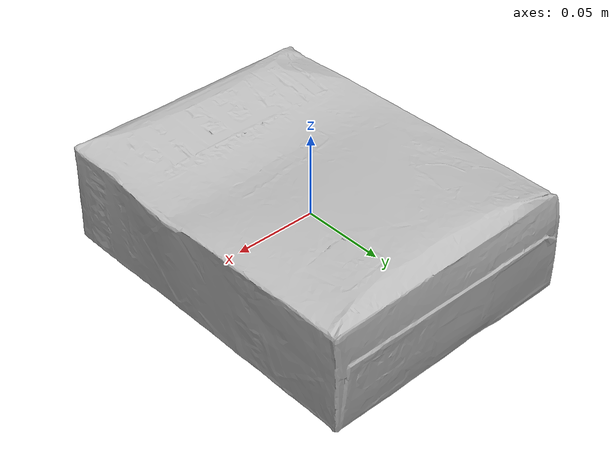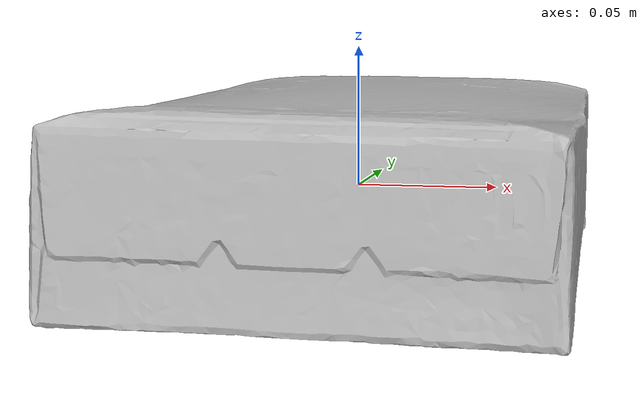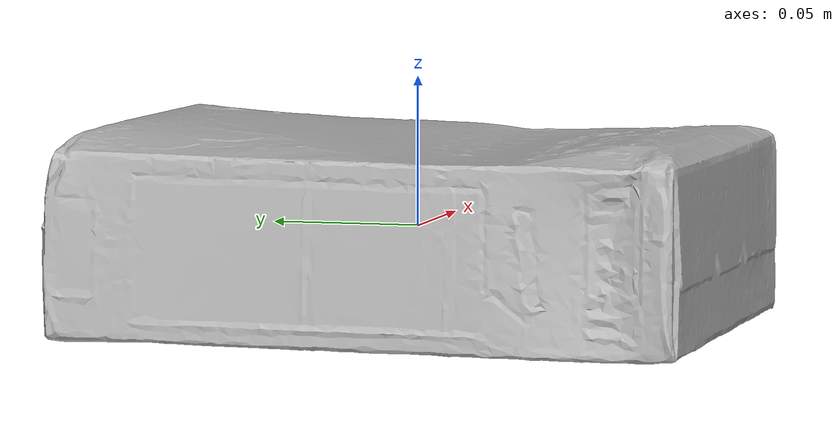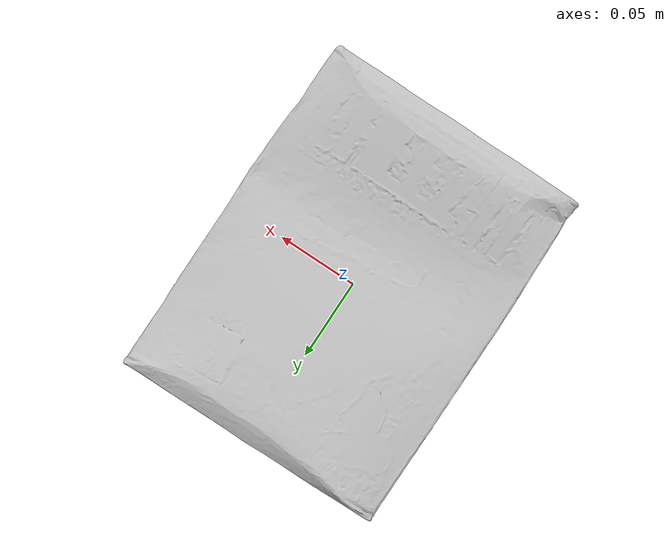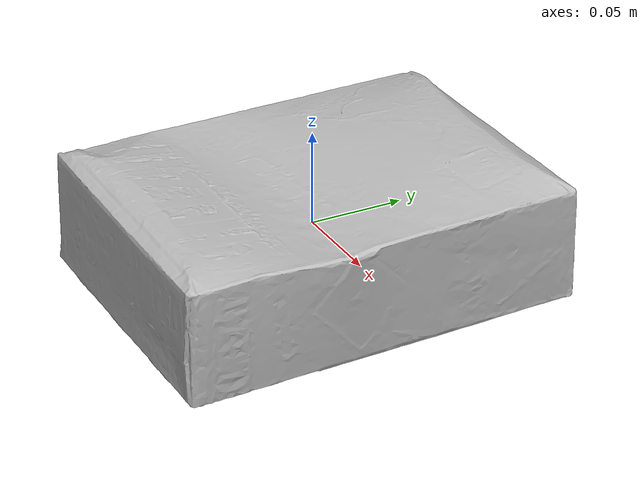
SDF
<?xml version="1.0"?>
<sdf version='1.6'>
<model name="003_cracker_box">
  <link name="base_link_cracker">

    <inertial>
      <pose frame=''>0 0 0 0 0 0</pose>
      <mass>0.411000</mass>
        <inertia>
          <ixx>0.001736</ixx>
          <ixy>0</ixy>
          <ixz>0</ixz>
          <iyy>0.001098</iyy>
          <iyz>0</iyz>
          <izz>0.002481</izz>
        </inertia>
    </inertial>

    <visual name='base_link_cracker'>
      <pose frame=''>0 0 0 0 0 0</pose>
      <geometry>
        <mesh>
          <uri>../meshes/003_cracker_box_textured.obj</uri>
        </mesh>
      </geometry>
    </visual>

    <collision name='cracker_box_collision'>
      <pose>0 0 0 0 0 0</pose>
      <geometry>
        <box>
          <size>0.158000 0.207400 0.065800</size>
        </box>
      </geometry>
      <material>
        <diffuse>0 1 0 1.0</diffuse>
      </material>
    </collision>

    <collision name='point_collision1'>
      <pose>0.079500 0.104200 0.033400 0 0 0 </pose>
      <geometry>
        <sphere><radius>1e-7</radius></sphere>
      </geometry>
    </collision>

    <collision name='point_collision2'>
      <pose>0.079500 -0.104200 0.033400 0 0 0 </pose>
      <geometry>
        <sphere><radius>1e-7</radius></sphere>
      </geometry>
    </collision>

    <collision name='point_collision3'>
      <pose>-0.079500 0.104200 0.033400 0 0 0 </pose>
      <geometry>
        <sphere><radius>1e-7</radius></sphere>
      </geometry>
    </collision>

    <collision name='point_collision4'>
      <pose>-0.079500 -0.104200 0.033400 0 0 0 </pose>
      <geometry>
        <sphere><radius>1e-7</radius></sphere>
      </geometry>
    </collision>

    <collision name='point_collision5'>
      <pose>0.079500 0.104200 -0.033400 0 0 0 </pose>
      <geometry>
        <sphere><radius>1e-7</radius></sphere>
      </geometry>
    </collision>

    <collision name='point_collision6'>
      <pose>0.079500 -0.104200 -0.033400 0 0 0 </pose>
      <geometry>
        <sphere><radius>1e-7</radius></sphere>
      </geometry>
    </collision>

    <collision name='point_collision7'>
      <pose>-0.079500 0.104200 -0.033400 0 0 0 </pose>
      <geometry>
        <sphere><radius>1e-7</radius></sphere>
      </geometry>
    </collision>

    <collision name='point_collision8'>
      <pose>-0.079500 -0.104200 -0.033400 0 0 0 </pose>
      <geometry>
        <sphere><radius>1e-7</radius></sphere>
      </geometry>
    </collision>

  </link>
</model>
</sdf>
